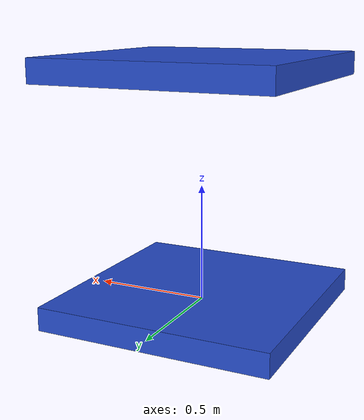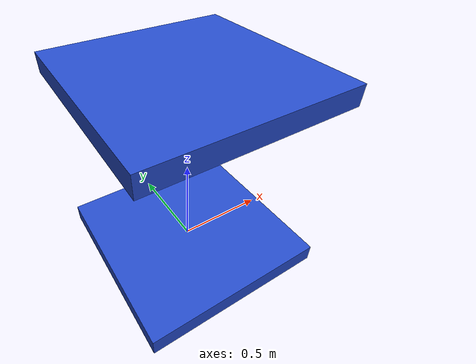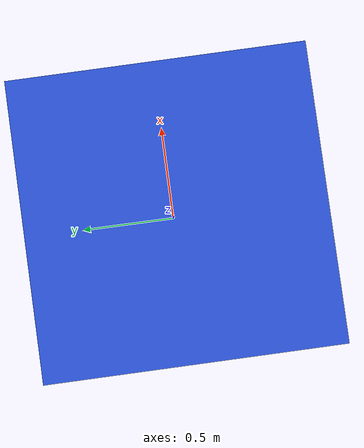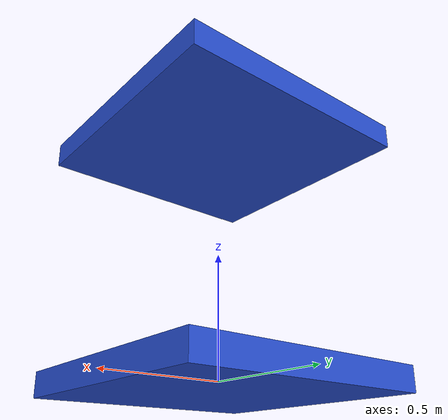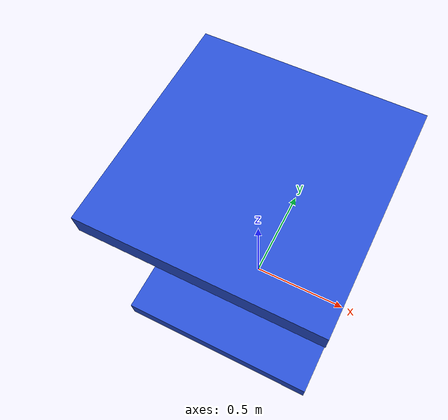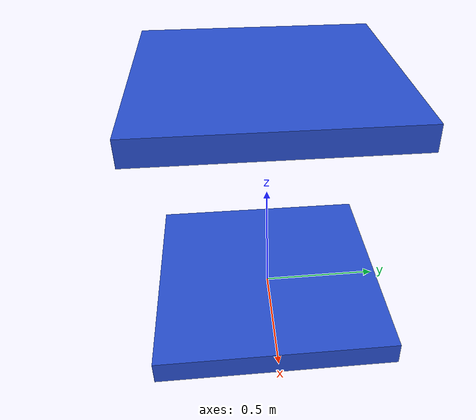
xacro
<?xml version="1.0"?>
<robot name="sample" xmlns:xacro="http://www.ros.org/wiki/xacro">
	<xacro:property name="length" value="1.85" />
	<xacro:property name="width" value="0.75" />
	<xacro:property name="heigth" value="0.6" />
	<xacro:property name="mass" value="420" />
	<xacro:property name="wheel_width" value="0.25" />
	<xacro:property name="wheel_radius" value="0.25" />
	<xacro:property name="wheel_mass" value="20" />
	<xacro:property name="wheel_turn_limit" value="${pi/4}" />
	<xacro:property name="wheelbase" value="1.24" />
	<xacro:property name="trackbase" value="1.00" />
	<xacro:property name="base_center" value="${length/2}" />
	<!-- inertia -->
	<xacro:macro name="null_inertial">
		<inertial>
			<mass value="0.001" />
			<inertia ixx="0.001" ixy="0" ixz="0" iyy="0.001" iyz="0" izz="0.001" />
		</inertial>
	</xacro:macro>
	<xacro:macro name="base_inertial" params="width length height mass *origin">
		<inertial>
			<xacro:insert_block name="origin" />
			<mass value="${mass}" />
			<inertia ixx="${mass * (width * width + height * height) / 12}" ixy="0" ixz="0" iyy="${mass * (length * length + height * height) / 12}" iyz="0" izz="${mass * (width * width + length * length) / 12}" />
		</inertial>
	</xacro:macro>
	<xacro:macro name="wheel_inertial" params="r h mass *origin">
		<inertial>
			<xacro:insert_block name="origin" />
			<mass value="${mass}" />
			<inertia ixx="${mass / 12 * (3 * r * r + h * h)}" ixy="0.0" ixz="0.0" iyy="${mass / 12 * (3 * r * r + h * h)}" iyz="0.0" izz="${mass / 2 * r * r}" />
		</inertial>
	</xacro:macro>
	<!-- xacro base new -->
	<link name="base_link">
		<pose>0 0 0 0 0 0</pose>
		<visual>
			<origin xyz="0 0 0" rpy="0 0 0" />
			<geometry>
				<box size="1 1 0.1" />
			</geometry>
			<material name="blue" />
		</visual>
		<collision name="base_collision">
			<origin xyz="0 0 0" rpy="0 0 0" />
			<geometry>
				<box size="1 1 0.1" />
			</geometry>
		</collision>
		<base_inertial width="1" length="1" height="0.1" mass="100">
			<origin xyz="0 0 0" rpy="0 0 0" />
		</base_inertial>
	</link>

	<joint name="spring_joint" type="prismatic">
		<limit lower="-0.5" upper="0.5" effort="0" velocity="0" />
		<parent link="base_link" />
		<child link="second_link" />
		<origin xyz="0 0 1" rpy="0 0 0"/>
    	<dynamics damping="0.0" friction="0.0"/>
	    <axis xyz="0 0 1"/>
	</joint>

  <gazebo reference="spring_joint">
    <implicitSpringDamper>true</implicitSpringDamper>
    <springStiffness>1000</springStiffness>
    <springReference>0</springReference>
  </gazebo>

	<link name="second_link">
		<pose>0 0 0 0 0 0</pose>
		<visual>
			<origin xyz="0 0 0" rpy="0 0 0" />
			<geometry>
				<box size="1 1 0.1" />
			</geometry>
			<material name="blue" />
		</visual>
		<collision name="base_collision">
			<origin xyz="0 0 0" rpy="0 0 0" />
			<geometry>
				<box size="1 1 0.1" />
			</geometry>
		</collision>
		<base_inertial width="1" length="1" height="0.1" mass="10">
			<origin xyz="0 0 0" rpy="0 0 0" />
		</base_inertial>
	</link>
</robot>
